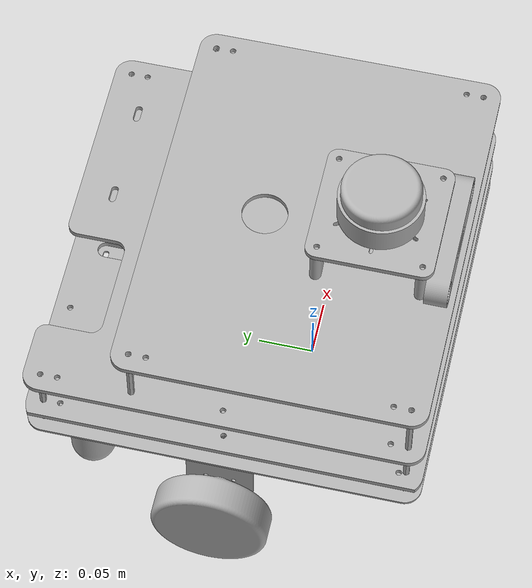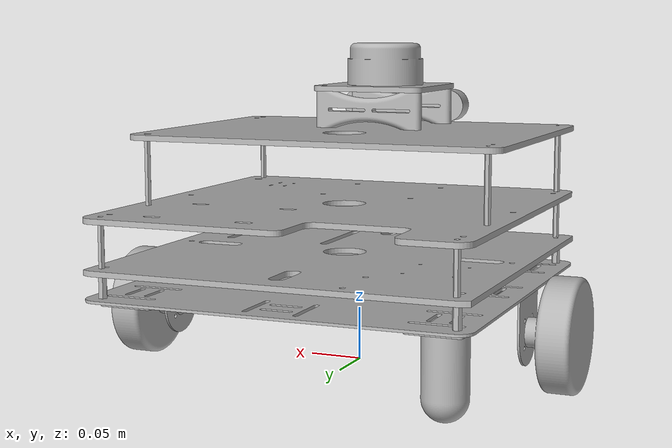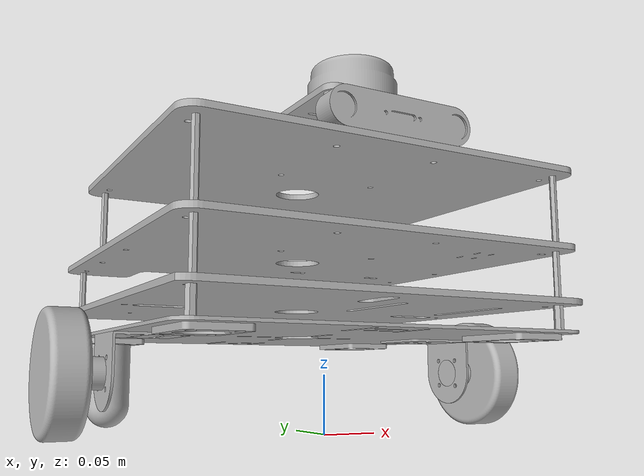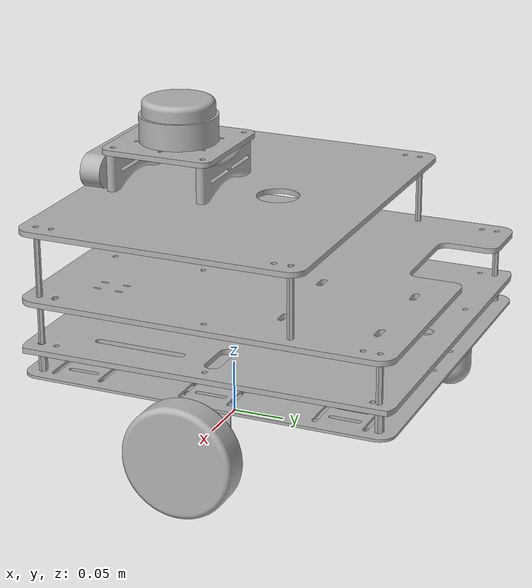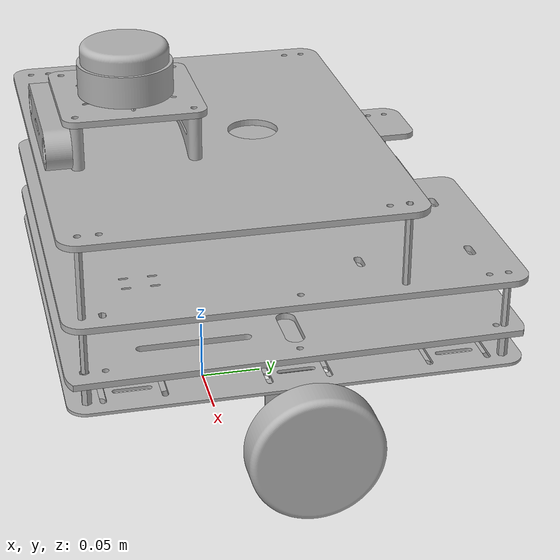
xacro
<?xml version="1.0" ?>
<robot name="testbed" xmlns:xacro="http://www.ros.org/wiki/xacro">

<xacro:include filename="$(find testbed_description)/urdf/materials.xacro" />
<xacro:include filename="$(find testbed_description)/urdf/testbed.trans" />
<xacro:include filename="$(find testbed_description)/urdf/testbed.gazebo" />
<link name="base_link">
  <inertial>
    <origin xyz="-0.002871838515289333 0.04469069037757764 0.08477091166251731" rpy="0 0 0"/>
    <mass value="2.2357349484143354"/>
    <inertia ixx="0.022857" iyy="0.022644" izz="0.045499" ixy="0.0" iyz="0.0" ixz="-0.0"/>
  </inertial>
  <visual>
    <origin xyz="0 0 0" rpy="0 0 0"/>
    <geometry>
      <mesh filename="file://$(find testbed_description)/meshes/base_link.stl" scale="0.001 0.001 0.001"/>
    </geometry>
    <material name="silver"/>
  </visual>
  <collision>
    <origin xyz="0 0 0" rpy="0 0 0"/>
    <geometry>
      <mesh filename="file://$(find testbed_description)/meshes/base_link.stl" scale="0.001 0.001 0.001"/>
    </geometry>
  </collision>
</link>

<link name="m3_2_1">
  <inertial>
    <origin xyz="1.6148470777244128e-07 -3.0962218194874325e-07 0.010499911662517472" rpy="0 0 0"/>
    <mass value="0.003910660159751433"/>
    <inertia ixx="0.0" iyy="0.0" izz="0.0" ixy="0.0" iyz="0.0" ixz="-0.0"/>
  </inertial>
  <visual>
    <origin xyz="0.162872 0.115309 -0.086021" rpy="0 0 0"/>
    <geometry>
      <mesh filename="file://$(find testbed_description)/meshes/m3_2_1.stl" scale="0.001 0.001 0.001"/>
    </geometry>
    <material name="silver"/>
  </visual>
  <collision>
    <origin xyz="0.162872 0.115309 -0.086021" rpy="0 0 0"/>
    <geometry>
      <mesh filename="file://$(find testbed_description)/meshes/m3_2_1.stl" scale="0.001 0.001 0.001"/>
    </geometry>
  </collision>
</link>

<link name="m3_4_1">
  <inertial>
    <origin xyz="1.614847048025947e-07 -3.096221857373793e-07 0.010499911662517028" rpy="0 0 0"/>
    <mass value="0.003910660159751499"/>
    <inertia ixx="0.0" iyy="0.0" izz="0.0" ixy="0.0" iyz="0.0" ixz="0.0"/>
  </inertial>
  <visual>
    <origin xyz="-0.157128 0.115309 -0.086021" rpy="0 0 0"/>
    <geometry>
      <mesh filename="file://$(find testbed_description)/meshes/m3_4_1.stl" scale="0.001 0.001 0.001"/>
    </geometry>
    <material name="silver"/>
  </visual>
  <collision>
    <origin xyz="-0.157128 0.115309 -0.086021" rpy="0 0 0"/>
    <geometry>
      <mesh filename="file://$(find testbed_description)/meshes/m3_4_1.stl" scale="0.001 0.001 0.001"/>
    </geometry>
  </collision>
</link>

<link name="m3_3_1">
  <inertial>
    <origin xyz="1.6148471135291054e-07 -3.0962219799146595e-07 0.010499911662517541" rpy="0 0 0"/>
    <mass value="0.0039106601597516605"/>
    <inertia ixx="0.0" iyy="0.0" izz="0.0" ixy="0.0" iyz="0.0" ixz="0.0"/>
  </inertial>
  <visual>
    <origin xyz="-0.157128 -0.204691 -0.086021" rpy="0 0 0"/>
    <geometry>
      <mesh filename="file://$(find testbed_description)/meshes/m3_3_1.stl" scale="0.001 0.001 0.001"/>
    </geometry>
    <material name="silver"/>
  </visual>
  <collision>
    <origin xyz="-0.157128 -0.204691 -0.086021" rpy="0 0 0"/>
    <geometry>
      <mesh filename="file://$(find testbed_description)/meshes/m3_3_1.stl" scale="0.001 0.001 0.001"/>
    </geometry>
  </collision>
</link>

<link name="m3_1_1">
  <inertial>
    <origin xyz="1.6148471645993645e-07 -3.096221920240172e-07 0.010499911662517972" rpy="0 0 0"/>
    <mass value="0.003910660159751418"/>
    <inertia ixx="0.0" iyy="0.0" izz="0.0" ixy="0.0" iyz="0.0" ixz="0.0"/>
  </inertial>
  <visual>
    <origin xyz="0.162872 -0.204691 -0.086021" rpy="0 0 0"/>
    <geometry>
      <mesh filename="file://$(find testbed_description)/meshes/m3_1_1.stl" scale="0.001 0.001 0.001"/>
    </geometry>
    <material name="silver"/>
  </visual>
  <collision>
    <origin xyz="0.162872 -0.204691 -0.086021" rpy="0 0 0"/>
    <geometry>
      <mesh filename="file://$(find testbed_description)/meshes/m3_1_1.stl" scale="0.001 0.001 0.001"/>
    </geometry>
  </collision>
</link>

<link name="plate_a_1">
  <inertial>
    <origin xyz="-0.287429651569517 0.3375615083598861 -0.08102108833748216" rpy="0 0 0"/>
    <mass value="0.6929229312968146"/>
    <inertia ixx="0.007184" iyy="0.007089" izz="0.014271" ixy="-1.4e-05" iyz="0.0" ixz="0.0"/>
  </inertial>
  <visual>
    <origin xyz="-0.283567 0.292726 -0.190542" rpy="0 0 0"/>
    <geometry>
      <mesh filename="file://$(find testbed_description)/meshes/plate_a_1.stl" scale="0.001 0.001 0.001"/>
    </geometry>
    <material name="silver"/>
  </visual>
  <collision>
    <origin xyz="-0.283567 0.292726 -0.190542" rpy="0 0 0"/>
    <geometry>
      <mesh filename="file://$(find testbed_description)/meshes/plate_a_1.stl" scale="0.001 0.001 0.001"/>
    </geometry>
  </collision>
</link>

<link name="m3_7_1">
  <inertial>
    <origin xyz="2.7335153393592826e-07 -4.1716615491182996e-07 0.019999911662518285" rpy="0 0 0"/>
    <mass value="0.004737292226075159"/>
    <inertia ixx="1e-06" iyy="1e-06" izz="0.0" ixy="0.0" iyz="0.0" ixz="-0.0"/>
  </inertial>
  <visual>
    <origin xyz="0.162142 0.115628 -0.112021" rpy="0 0 0"/>
    <geometry>
      <mesh filename="file://$(find testbed_description)/meshes/m3_7_1.stl" scale="0.001 0.001 0.001"/>
    </geometry>
    <material name="silver"/>
  </visual>
  <collision>
    <origin xyz="0.162142 0.115628 -0.112021" rpy="0 0 0"/>
    <geometry>
      <mesh filename="file://$(find testbed_description)/meshes/m3_7_1.stl" scale="0.001 0.001 0.001"/>
    </geometry>
  </collision>
</link>

<link name="m3_6_1">
  <inertial>
    <origin xyz="-0.11660092516747805 -0.14290657071041882 -0.06352108833748199" rpy="0 0 0"/>
    <mass value="0.0046422546678769275"/>
    <inertia ixx="1e-06" iyy="1e-06" izz="0.0" ixy="-0.0" iyz="0.0" ixz="-0.0"/>
  </inertial>
  <visual>
    <origin xyz="-0.273487 -0.02723 -0.195542" rpy="0 0 0"/>
    <geometry>
      <mesh filename="file://$(find testbed_description)/meshes/m3_6_1.stl" scale="0.001 0.001 0.001"/>
    </geometry>
    <material name="silver"/>
  </visual>
  <collision>
    <origin xyz="-0.273487 -0.02723 -0.195542" rpy="0 0 0"/>
    <geometry>
      <mesh filename="file://$(find testbed_description)/meshes/m3_6_1.stl" scale="0.001 0.001 0.001"/>
    </geometry>
  </collision>
</link>

<link name="m3_8_1">
  <inertial>
    <origin xyz="2.7337389232884313e-07 -4.171661580620878e-07 0.019999911662518674" rpy="0 0 0"/>
    <mass value="0.004737292226075157"/>
    <inertia ixx="1e-06" iyy="1e-06" izz="0.0" ixy="0.0" iyz="0.0" ixz="-0.0"/>
  </inertial>
  <visual>
    <origin xyz="-0.157858 -0.204372 -0.112021" rpy="0 0 0"/>
    <geometry>
      <mesh filename="file://$(find testbed_description)/meshes/m3_8_1.stl" scale="0.001 0.001 0.001"/>
    </geometry>
    <material name="silver"/>
  </visual>
  <collision>
    <origin xyz="-0.157858 -0.204372 -0.112021" rpy="0 0 0"/>
    <geometry>
      <mesh filename="file://$(find testbed_description)/meshes/m3_8_1.stl" scale="0.001 0.001 0.001"/>
    </geometry>
  </collision>
</link>

<link name="m3_5_1">
  <inertial>
    <origin xyz="-5.423040455587724e-07 -4.595496392589826e-07 0.019999911662518147" rpy="0 0 0"/>
    <mass value="0.004734938941716534"/>
    <inertia ixx="1e-06" iyy="1e-06" izz="0.0" ixy="0.0" iyz="0.0" ixz="0.0"/>
  </inertial>
  <visual>
    <origin xyz="0.162142 -0.204372 -0.112021" rpy="0 0 0"/>
    <geometry>
      <mesh filename="file://$(find testbed_description)/meshes/m3_5_1.stl" scale="0.001 0.001 0.001"/>
    </geometry>
    <material name="silver"/>
  </visual>
  <collision>
    <origin xyz="0.162142 -0.204372 -0.112021" rpy="0 0 0"/>
    <geometry>
      <mesh filename="file://$(find testbed_description)/meshes/m3_5_1.stl" scale="0.001 0.001 0.001"/>
    </geometry>
  </collision>
</link>

<link name="plate_b_1">
  <inertial>
    <origin xyz="0.03278613287262262 0.3158779962960577 -0.08102108833748231" rpy="0 0 0"/>
    <mass value="0.6844049179859125"/>
    <inertia ixx="0.006622" iyy="0.007189" izz="0.013808" ixy="-0.000295" iyz="0.0" ixz="0.0"/>
  </inertial>
  <visual>
    <origin xyz="0.032373 0.278415 -0.235542" rpy="0 0 0"/>
    <geometry>
      <mesh filename="file://$(find testbed_description)/meshes/plate_b_1.stl" scale="0.001 0.001 0.001"/>
    </geometry>
    <material name="silver"/>
  </visual>
  <collision>
    <origin xyz="0.032373 0.278415 -0.235542" rpy="0 0 0"/>
    <geometry>
      <mesh filename="file://$(find testbed_description)/meshes/plate_b_1.stl" scale="0.001 0.001 0.001"/>
    </geometry>
  </collision>
</link>

<link name="m3_10_1">
  <inertial>
    <origin xyz="-2.7528053629377602e-05 4.773646407056631e-05 0.029999911662518974" rpy="0 0 0"/>
    <mass value="0.006963381653081437"/>
    <inertia ixx="2e-06" iyy="2e-06" izz="0.0" ixy="-0.0" iyz="0.0" ixz="-0.0"/>
  </inertial>
  <visual>
    <origin xyz="-0.157858 0.115628 -0.157021" rpy="0 0 0"/>
    <geometry>
      <mesh filename="file://$(find testbed_description)/meshes/m3_10_1.stl" scale="0.001 0.001 0.001"/>
    </geometry>
    <material name="silver"/>
  </visual>
  <collision>
    <origin xyz="-0.157858 0.115628 -0.157021" rpy="0 0 0"/>
    <geometry>
      <mesh filename="file://$(find testbed_description)/meshes/m3_10_1.stl" scale="0.001 0.001 0.001"/>
    </geometry>
  </collision>
</link>

<link name="m3_9_1">
  <inertial>
    <origin xyz="2.73350543505968e-07 -4.171627568660963e-07 0.029999911662519446" rpy="0 0 0"/>
    <mass value="0.007105938298349734"/>
    <inertia ixx="2e-06" iyy="2e-06" izz="0.0" ixy="0.0" iyz="0.0" ixz="-0.0"/>
  </inertial>
  <visual>
    <origin xyz="0.162142 0.115628 -0.157021" rpy="0 0 0"/>
    <geometry>
      <mesh filename="file://$(find testbed_description)/meshes/m3_9_1.stl" scale="0.001 0.001 0.001"/>
    </geometry>
    <material name="silver"/>
  </visual>
  <collision>
    <origin xyz="0.162142 0.115628 -0.157021" rpy="0 0 0"/>
    <geometry>
      <mesh filename="file://$(find testbed_description)/meshes/m3_9_1.stl" scale="0.001 0.001 0.001"/>
    </geometry>
  </collision>
</link>

<link name="m3_11_1">
  <inertial>
    <origin xyz="2.7317251694025657e-07 -4.1705451807316773e-07 0.029999911662519058" rpy="0 0 0"/>
    <mass value="0.007105938742419905"/>
    <inertia ixx="2e-06" iyy="2e-06" izz="0.0" ixy="0.0" iyz="0.0" ixz="0.0"/>
  </inertial>
  <visual>
    <origin xyz="0.162142 -0.124372 -0.157021" rpy="0 0 0"/>
    <geometry>
      <mesh filename="file://$(find testbed_description)/meshes/m3_11_1.stl" scale="0.001 0.001 0.001"/>
    </geometry>
    <material name="silver"/>
  </visual>
  <collision>
    <origin xyz="0.162142 -0.124372 -0.157021" rpy="0 0 0"/>
    <geometry>
      <mesh filename="file://$(find testbed_description)/meshes/m3_11_1.stl" scale="0.001 0.001 0.001"/>
    </geometry>
  </collision>
</link>

<link name="m3_12_1">
  <inertial>
    <origin xyz="2.733784830455388e-07 -4.1717282692199653e-07 0.029999911662519058" rpy="0 0 0"/>
    <mass value="0.007105938257057643"/>
    <inertia ixx="2e-06" iyy="2e-06" izz="0.0" ixy="-0.0" iyz="0.0" ixz="0.0"/>
  </inertial>
  <visual>
    <origin xyz="-0.157858 -0.124372 -0.157021" rpy="0 0 0"/>
    <geometry>
      <mesh filename="file://$(find testbed_description)/meshes/m3_12_1.stl" scale="0.001 0.001 0.001"/>
    </geometry>
    <material name="silver"/>
  </visual>
  <collision>
    <origin xyz="-0.157858 -0.124372 -0.157021" rpy="0 0 0"/>
    <geometry>
      <mesh filename="file://$(find testbed_description)/meshes/m3_12_1.stl" scale="0.001 0.001 0.001"/>
    </geometry>
  </collision>
</link>

<link name="plate_c_1">
  <inertial>
    <origin xyz="0.159989959892115 0.11950596872715971 0.002499911662519949" rpy="0 0 0"/>
    <mass value="0.5520670064809862"/>
    <inertia ixx="0.003368" iyy="0.005678" izz="0.009043" ixy="1e-06" iyz="0.0" ixz="0.0"/>
  </inertial>
  <visual>
    <origin xyz="0.162142 0.115628 -0.217021" rpy="0 0 0"/>
    <geometry>
      <mesh filename="file://$(find testbed_description)/meshes/plate_c_1.stl" scale="0.001 0.001 0.001"/>
    </geometry>
    <material name="silver"/>
  </visual>
  <collision>
    <origin xyz="0.162142 0.115628 -0.217021" rpy="0 0 0"/>
    <geometry>
      <mesh filename="file://$(find testbed_description)/meshes/plate_c_1.stl" scale="0.001 0.001 0.001"/>
    </geometry>
  </collision>
</link>

<link name="deptcam_holder_1_1">
  <inertial>
    <origin xyz="0.04318266206360163 -4.235057758650296e-07 0.017499773302860233" rpy="0 0 0"/>
    <mass value="0.028375637610263075"/>
    <inertia ixx="3e-06" iyy="3.3e-05" izz="3.1e-05" ixy="0.0" iyz="-0.0" ixz="-0.0"/>
  </inertial>
  <visual>
    <origin xyz="0.047142 0.100628 -0.222021" rpy="0 0 0"/>
    <geometry>
      <mesh filename="file://$(find testbed_description)/meshes/deptcam_holder_1_1.stl" scale="0.001 0.001 0.001"/>
    </geometry>
    <material name="silver"/>
  </visual>
  <collision>
    <origin xyz="0.047142 0.100628 -0.222021" rpy="0 0 0"/>
    <geometry>
      <mesh filename="file://$(find testbed_description)/meshes/deptcam_holder_1_1.stl" scale="0.001 0.001 0.001"/>
    </geometry>
  </collision>
</link>

<link name="deptcam_holder_2_1">
  <inertial>
    <origin xyz="0.043182662063602335 -4.2350577596043937e-07 0.017499773302860455" rpy="0 0 0"/>
    <mass value="0.02837563761026307"/>
    <inertia ixx="3e-06" iyy="3.3e-05" izz="3.1e-05" ixy="0.0" iyz="-0.0" ixz="-0.0"/>
  </inertial>
  <visual>
    <origin xyz="0.047142 0.010628 -0.222021" rpy="0 0 0"/>
    <geometry>
      <mesh filename="file://$(find testbed_description)/meshes/deptcam_holder_2_1.stl" scale="0.001 0.001 0.001"/>
    </geometry>
    <material name="silver"/>
  </visual>
  <collision>
    <origin xyz="0.047142 0.010628 -0.222021" rpy="0 0 0"/>
    <geometry>
      <mesh filename="file://$(find testbed_description)/meshes/deptcam_holder_2_1.stl" scale="0.001 0.001 0.001"/>
    </geometry>
  </collision>
</link>

<link name="plate_d_1">
  <inertial>
    <origin xyz="0.08572927337078305 -0.08385841716625288 -0.05648508833747806" rpy="0 0 0"/>
    <mass value="0.06777225232995158"/>
    <inertia ixx="6.9e-05" iyy="6.9e-05" izz="0.000138" ixy="0.0" iyz="0.0" ixz="0.0"/>
  </inertial>
  <visual>
    <origin xyz="0.089871 -0.02823 -0.316006" rpy="0 0 0"/>
    <geometry>
      <mesh filename="file://$(find testbed_description)/meshes/plate_d_1.stl" scale="0.001 0.001 0.001"/>
    </geometry>
    <material name="silver"/>
  </visual>
  <collision>
    <origin xyz="0.089871 -0.02823 -0.316006" rpy="0 0 0"/>
    <geometry>
      <mesh filename="file://$(find testbed_description)/meshes/plate_d_1.stl" scale="0.001 0.001 0.001"/>
    </geometry>
  </collision>
</link>

<link name="right_clamp_1">
  <inertial>
    <origin xyz="-0.01816069072185117 -1.009706167034996e-05 -0.012977690718363757" rpy="0 0 0"/>
    <mass value="0.09412923578540548"/>
    <inertia ixx="5.9e-05" iyy="7.1e-05" izz="7e-05" ixy="-0.0" iyz="0.0" ixz="1.9e-05"/>
  </inertial>
  <visual>
    <origin xyz="-0.172128 -0.044691 -0.083521" rpy="0 0 0"/>
    <geometry>
      <mesh filename="file://$(find testbed_description)/meshes/right_clamp_1.stl" scale="0.001 0.001 0.001"/>
    </geometry>
    <material name="silver"/>
  </visual>
  <collision>
    <origin xyz="-0.172128 -0.044691 -0.083521" rpy="0 0 0"/>
    <geometry>
      <mesh filename="file://$(find testbed_description)/meshes/right_clamp_1.stl" scale="0.001 0.001 0.001"/>
    </geometry>
  </collision>
</link>

<link name="left_clamp_1">
  <inertial>
    <origin xyz="0.01816101369127307 9.477816823963425e-06 -0.012977690718362994" rpy="0 0 0"/>
    <mass value="0.0941292357854055"/>
    <inertia ixx="5.9e-05" iyy="7.1e-05" izz="7e-05" ixy="-0.0" iyz="-0.0" ixz="-1.9e-05"/>
  </inertial>
  <visual>
    <origin xyz="0.177872 -0.044691 -0.083521" rpy="0 0 0"/>
    <geometry>
      <mesh filename="file://$(find testbed_description)/meshes/left_clamp_1.stl" scale="0.001 0.001 0.001"/>
    </geometry>
    <material name="silver"/>
  </visual>
  <collision>
    <origin xyz="0.177872 -0.044691 -0.083521" rpy="0 0 0"/>
    <geometry>
      <mesh filename="file://$(find testbed_description)/meshes/left_clamp_1.stl" scale="0.001 0.001 0.001"/>
    </geometry>
  </collision>
</link>

<link name="caster_clamp_1_1">
  <inertial>
    <origin xyz="-0.13652383851529626 -0.0869133096224184 -0.08602108833748355" rpy="0 0 0"/>
    <mass value="0.07648123477927708"/>
    <inertia ixx="4.3e-05" iyy="2e-05" izz="6.3e-05" ixy="0.0" iyz="0.0" ixz="0.0"/>
  </inertial>
  <visual>
    <origin xyz="-0.272937 -0.006104 -0.167042" rpy="0 0 0"/>
    <geometry>
      <mesh filename="file://$(find testbed_description)/meshes/caster_clamp_1_1.stl" scale="0.001 0.001 0.001"/>
    </geometry>
    <material name="silver"/>
  </visual>
  <collision>
    <origin xyz="-0.272937 -0.006104 -0.167042" rpy="0 0 0"/>
    <geometry>
      <mesh filename="file://$(find testbed_description)/meshes/caster_clamp_1_1.stl" scale="0.001 0.001 0.001"/>
    </geometry>
  </collision>
</link>

<link name="caster_clamp_2_1">
  <inertial>
    <origin xyz="0.1134761614847103 0.16308669037757262 -0.08602108833748305" rpy="0 0 0"/>
    <mass value="0.07648123477927704"/>
    <inertia ixx="4.3e-05" iyy="2e-05" izz="6.3e-05" ixy="0.0" iyz="0.0" ixz="0.0"/>
  </inertial>
  <visual>
    <origin xyz="-0.022937 -0.006104 -0.167042" rpy="0 0 0"/>
    <geometry>
      <mesh filename="file://$(find testbed_description)/meshes/caster_clamp_2_1.stl" scale="0.001 0.001 0.001"/>
    </geometry>
    <material name="silver"/>
  </visual>
  <collision>
    <origin xyz="-0.022937 -0.006104 -0.167042" rpy="0 0 0"/>
    <geometry>
      <mesh filename="file://$(find testbed_description)/meshes/caster_clamp_2_1.stl" scale="0.001 0.001 0.001"/>
    </geometry>
  </collision>
</link>

<link name="caster_clamp_4_1">
  <inertial>
    <origin xyz="-0.41509383851529014 0.1916566903775828 -0.0860210883374831" rpy="0 0 0"/>
    <mass value="0.07648123477927705"/>
    <inertia ixx="4.3e-05" iyy="2e-05" izz="6.3e-05" ixy="0.0" iyz="0.0" ixz="-0.0"/>
  </inertial>
  <visual>
    <origin xyz="-0.272937 0.272466 -0.167042" rpy="0 0 0"/>
    <geometry>
      <mesh filename="file://$(find testbed_description)/meshes/caster_clamp_4_1.stl" scale="0.001 0.001 0.001"/>
    </geometry>
    <material name="silver"/>
  </visual>
  <collision>
    <origin xyz="-0.272937 0.272466 -0.167042" rpy="0 0 0"/>
    <geometry>
      <mesh filename="file://$(find testbed_description)/meshes/caster_clamp_4_1.stl" scale="0.001 0.001 0.001"/>
    </geometry>
  </collision>
</link>

<link name="caster_clamp_3_1">
  <inertial>
    <origin xyz="-0.1650938380944446 0.44165669037757604 -0.08602108833748263" rpy="0 0 0"/>
    <mass value="0.07648123477927704"/>
    <inertia ixx="4.3e-05" iyy="2e-05" izz="6.3e-05" ixy="0.0" iyz="0.0" ixz="0.0"/>
  </inertial>
  <visual>
    <origin xyz="-0.022937 0.272466 -0.167042" rpy="0 0 0"/>
    <geometry>
      <mesh filename="file://$(find testbed_description)/meshes/caster_clamp_3_1.stl" scale="0.001 0.001 0.001"/>
    </geometry>
    <material name="silver"/>
  </visual>
  <collision>
    <origin xyz="-0.022937 0.272466 -0.167042" rpy="0 0 0"/>
    <geometry>
      <mesh filename="file://$(find testbed_description)/meshes/caster_clamp_3_1.stl" scale="0.001 0.001 0.001"/>
    </geometry>
  </collision>
</link>

<link name="lidar_1">
  <inertial>
    <origin xyz="2.733707808637645e-07 -4.1716625040488786e-07 0.019152816088995717" rpy="0 0 0"/>
    <mass value="0.22307407736907112"/>
    <inertia ixx="0.000101" iyy="0.000101" izz="0.000145" ixy="0.0" iyz="0.0" ixz="-0.0"/>
  </inertial>
  <visual>
    <origin xyz="0.004142 0.055628 -0.262021" rpy="0 0 0"/>
    <geometry>
      <mesh filename="file://$(find testbed_description)/meshes/lidar_1.stl" scale="0.001 0.001 0.001"/>
    </geometry>
    <material name="silver"/>
  </visual>
  <collision>
    <origin xyz="0.004142 0.055628 -0.262021" rpy="0 0 0"/>
    <geometry>
      <mesh filename="file://$(find testbed_description)/meshes/lidar_1.stl" scale="0.001 0.001 0.001"/>
    </geometry>
  </collision>
</link>

<gazebo reference="lidar_1">
        <material>Gazebo/Red</material>

        <sensor name="laser" type="ray">       //ray sensor
            <pose> 0 0 0 0 0 0 </pose>
            <visualize>true</visualize>
            <update_rate>10</update_rate>
            <ray>
                <scan>
                    <horizontal>
                        <samples>360</samples>
                        <min_angle>-3.14</min_angle>
                        <max_angle>3.14</max_angle>
                    </horizontal>
                </scan>
                <range>
                    <min>0.3</min>
                    <max>12</max>
                </range>
            </ray>
            <plugin name="laser_controller" filename="libgazebo_ros_ray_sensor.so">
                <ros>
                    <argument>~/out:=scan</argument>
                </ros>
                <output_type>sensor_msgs/LaserScan</output_type>
                <frame_name>laser_frame</frame_name>
            </plugin>
        </sensor>
    </gazebo>

    <gazebo>
        <plugin name='diff_drive' filename='libgazebo_ros_diff_drive.so'>

            <!-- Wheel Information -->
            <left_joint>Revolute 28</left_joint>
            <right_joint>Revolute 27</right_joint>
            <wheel_separation>0.386</wheel_separation>
            <wheel_diameter>0.1</wheel_diameter>

            <!-- Limits -->
            <max_wheel_torque>200</max_wheel_torque>
            <max_wheel_acceleration>10.0</max_wheel_acceleration>

            <!-- Output -->
            <odometry_frame>odom</odometry_frame>
            <robot_base_frame>base_link</robot_base_frame>

            <publish_odom>true</publish_odom>
            <publish_odom_tf>true</publish_odom_tf>
            <publish_wheel_tf>true</publish_wheel_tf>

        </plugin>
    </gazebo>

<link name="deptcam_1">
  <inertial>
    <origin xyz="4.543341335743606e-06 -0.009815091027303102 -2.6253696577827057e-07" rpy="0 0 0"/>
    <mass value="0.101119504718155"/>
    <inertia ixx="1.1e-05" iyy="0.000129" izz="0.000125" ixy="0.0" iyz="-0.0" ixz="0.0"/>
  </inertial>
  <visual>
    <origin xyz="0.004142 0.105628 -0.239521" rpy="0 0 0"/>
    <geometry>
      <mesh filename="file://$(find testbed_description)/meshes/deptcam_1.stl" scale="0.001 0.001 0.001"/>
    </geometry>
    <material name="silver"/>
  </visual>
  <collision>
    <origin xyz="0.004142 0.105628 -0.239521" rpy="0 0 0"/>
    <geometry>
      <mesh filename="file://$(find testbed_description)/meshes/deptcam_1.stl" scale="0.001 0.001 0.001"/>
    </geometry>
  </collision>
</link>

<link name="right_wheel_1">
  <inertial>
    <origin xyz="0.03392962603429786 -3.0962233631137703e-07 -8.833748384173834e-08" rpy="0 0 0"/>
    <mass value="0.23957060451958892"/>
    <inertia ixx="0.000301" iyy="0.000174" izz="0.000174" ixy="0.0" iyz="0.0" ixz="0.0"/>
  </inertial>
  <visual>
    <origin xyz="-0.170128 -0.044691 -0.051521" rpy="0 0 0"/>
    <geometry>
      <mesh filename="file://$(find testbed_description)/meshes/right_wheel_1.stl" scale="0.001 0.001 0.001"/>
    </geometry>
    <material name="silver"/>
  </visual>
  <collision>
    <origin xyz="-0.170128 -0.044691 -0.051521" rpy="0 0 0"/>
    <geometry>
      <mesh filename="file://$(find testbed_description)/meshes/right_wheel_1.stl" scale="0.001 0.001 0.001"/>
    </geometry>
  </collision>
</link>

<link name="left_wheel_1">
  <inertial>
    <origin xyz="-0.033929303064876515 2.410058976484719e-07 -1.522553646354785e-07" rpy="0 0 0"/>
    <mass value="0.23957060451958895"/>
    <inertia ixx="0.000301" iyy="0.000174" izz="0.000174" ixy="0.0" iyz="0.0" ixz="0.0"/>
  </inertial>
  <visual>
    <origin xyz="0.175872 -0.04469 -0.051521" rpy="0 0 0"/>
    <geometry>
      <mesh filename="file://$(find testbed_description)/meshes/left_wheel_1.stl" scale="0.001 0.001 0.001"/>
    </geometry>
    <material name="silver"/>
  </visual>
  <collision>
    <origin xyz="0.175872 -0.04469 -0.051521" rpy="0 0 0"/>
    <geometry>
      <mesh filename="file://$(find testbed_description)/meshes/left_wheel_1.stl" scale="0.001 0.001 0.001"/>
    </geometry>
  </collision>
</link>

<link name="caster2_1">
  <inertial>
    <origin xyz="1.6148470430299433e-07 -3.096224187315588e-07 -0.03846174557976324" rpy="0 0 0"/>
    <mass value="0.770402294464313"/>
    <inertia ixx="0.00046" iyy="0.00046" izz="0.000149" ixy="0.0" iyz="0.0" ixz="0.0"/>
  </inertial>
  <visual>
    <origin xyz="-0.136413 0.080809 -0.083521" rpy="0 0 0"/>
    <geometry>
      <mesh filename="file://$(find testbed_description)/meshes/caster2_1.stl" scale="0.001 0.001 0.001"/>
    </geometry>
    <material name="silver"/>
  </visual>
  <collision>
    <origin xyz="-0.136413 0.080809 -0.083521" rpy="0 0 0"/>
    <geometry>
      <mesh filename="file://$(find testbed_description)/meshes/caster2_1.stl" scale="0.001 0.001 0.001"/>
    </geometry>
  </collision>
</link>

<link name="caster1_1">
  <inertial>
    <origin xyz="1.6148470896593103e-07 -3.0962241687193526e-07 -0.03846174557976263" rpy="0 0 0"/>
    <mass value="0.7704022944643129"/>
    <inertia ixx="0.00046" iyy="0.00046" izz="0.000149" ixy="0.0" iyz="-0.0" ixz="0.0"/>
  </inertial>
  <visual>
    <origin xyz="0.142157 0.080809 -0.083521" rpy="0 0 0"/>
    <geometry>
      <mesh filename="file://$(find testbed_description)/meshes/caster1_1.stl" scale="0.001 0.001 0.001"/>
    </geometry>
    <material name="silver"/>
  </visual>
  <collision>
    <origin xyz="0.142157 0.080809 -0.083521" rpy="0 0 0"/>
    <geometry>
      <mesh filename="file://$(find testbed_description)/meshes/caster1_1.stl" scale="0.001 0.001 0.001"/>
    </geometry>
  </collision>
</link>

<link name="caster3_1">
  <inertial>
    <origin xyz="1.6148470985410945e-07 -3.096224280851878e-07 -0.03846174557976274" rpy="0 0 0"/>
    <mass value="0.770402294464313"/>
    <inertia ixx="0.00046" iyy="0.00046" izz="0.000149" ixy="0.0" iyz="-0.0" ixz="0.0"/>
  </inertial>
  <visual>
    <origin xyz="-0.136413 -0.169191 -0.083521" rpy="0 0 0"/>
    <geometry>
      <mesh filename="file://$(find testbed_description)/meshes/caster3_1.stl" scale="0.001 0.001 0.001"/>
    </geometry>
    <material name="silver"/>
  </visual>
  <collision>
    <origin xyz="-0.136413 -0.169191 -0.083521" rpy="0 0 0"/>
    <geometry>
      <mesh filename="file://$(find testbed_description)/meshes/caster3_1.stl" scale="0.001 0.001 0.001"/>
    </geometry>
  </collision>
</link>

<link name="caster4_1">
  <inertial>
    <origin xyz="1.619055567669836e-07 -3.0962242281162844e-07 -0.038461745579762674" rpy="0 0 0"/>
    <mass value="0.770402294464313"/>
    <inertia ixx="0.00046" iyy="0.00046" izz="0.000149" ixy="0.0" iyz="-0.0" ixz="0.0"/>
  </inertial>
  <visual>
    <origin xyz="0.142157 -0.169191 -0.083521" rpy="0 0 0"/>
    <geometry>
      <mesh filename="file://$(find testbed_description)/meshes/caster4_1.stl" scale="0.001 0.001 0.001"/>
    </geometry>
    <material name="silver"/>
  </visual>
  <collision>
    <origin xyz="0.142157 -0.169191 -0.083521" rpy="0 0 0"/>
    <geometry>
      <mesh filename="file://$(find testbed_description)/meshes/caster4_1.stl" scale="0.001 0.001 0.001"/>
    </geometry>
  </collision>
</link>

<joint name="Rigid 1" type="fixed">
  <origin xyz="-0.162872 -0.115309 0.086021" rpy="0 0 0"/>
  <parent link="base_link"/>
  <child link="m3_2_1"/>
</joint>

<joint name="Rigid 2" type="fixed">
  <origin xyz="0.157128 -0.115309 0.086021" rpy="0 0 0"/>
  <parent link="base_link"/>
  <child link="m3_4_1"/>
</joint>

<joint name="Rigid 3" type="fixed">
  <origin xyz="0.157128 0.204691 0.086021" rpy="0 0 0"/>
  <parent link="base_link"/>
  <child link="m3_3_1"/>
</joint>

<joint name="Rigid 4" type="fixed">
  <origin xyz="-0.162872 0.204691 0.086021" rpy="0 0 0"/>
  <parent link="base_link"/>
  <child link="m3_1_1"/>
</joint>

<joint name="Rigid 5" type="fixed">
  <origin xyz="0.446439 -0.177417 0.104521" rpy="0 0 0"/>
  <parent link="m3_2_1"/>
  <child link="plate_a_1"/>
</joint>

<joint name="Rigid 6" type="fixed">
  <origin xyz="-0.445709 0.177098 -0.078521" rpy="0 0 0"/>
  <parent link="plate_a_1"/>
  <child link="m3_7_1"/>
</joint>

<joint name="Rigid 7" type="fixed">
  <origin xyz="-0.01008 0.319956 0.005" rpy="0 0 0"/>
  <parent link="plate_a_1"/>
  <child link="m3_6_1"/>
</joint>

<joint name="Rigid 8" type="fixed">
  <origin xyz="-0.125709 0.497098 -0.078521" rpy="0 0 0"/>
  <parent link="plate_a_1"/>
  <child link="m3_8_1"/>
</joint>

<joint name="Rigid 9" type="fixed">
  <origin xyz="-0.445709 0.497098 -0.078521" rpy="0 0 0"/>
  <parent link="plate_a_1"/>
  <child link="m3_5_1"/>
</joint>

<joint name="Rigid 10" type="fixed">
  <origin xyz="0.129769 -0.482787 0.123521" rpy="0 0 0"/>
  <parent link="m3_5_1"/>
  <child link="plate_b_1"/>
</joint>

<joint name="Rigid 11" type="fixed">
  <origin xyz="0.190231 0.162787 -0.078521" rpy="0 0 0"/>
  <parent link="plate_b_1"/>
  <child link="m3_10_1"/>
</joint>

<joint name="Rigid 12" type="fixed">
  <origin xyz="-0.129769 0.162787 -0.078521" rpy="0 0 0"/>
  <parent link="plate_b_1"/>
  <child link="m3_9_1"/>
</joint>

<joint name="Rigid 13" type="fixed">
  <origin xyz="-0.129769 0.402787 -0.078521" rpy="0 0 0"/>
  <parent link="plate_b_1"/>
  <child link="m3_11_1"/>
</joint>

<joint name="Rigid 14" type="fixed">
  <origin xyz="0.190231 0.402787 -0.078521" rpy="0 0 0"/>
  <parent link="plate_b_1"/>
  <child link="m3_12_1"/>
</joint>

<joint name="Rigid 15" type="fixed">
  <origin xyz="0.0 0.0 0.06" rpy="0 0 0"/>
  <parent link="m3_9_1"/>
  <child link="plate_c_1"/>
</joint>

<joint name="Rigid 16" type="fixed">
  <origin xyz="0.115 0.015 0.005" rpy="0 0 0"/>
  <parent link="plate_c_1"/>
  <child link="deptcam_holder_1_1"/>
</joint>

<joint name="Rigid 17" type="fixed">
  <origin xyz="0.115 0.105 0.005" rpy="0 0 0"/>
  <parent link="plate_c_1"/>
  <child link="deptcam_holder_2_1"/>
</joint>

<joint name="Rigid 18" type="fixed">
  <origin xyz="-0.042729 0.038858 0.093985" rpy="0 0 0"/>
  <parent link="deptcam_holder_2_1"/>
  <child link="plate_d_1"/>
</joint>

<joint name="Rigid 19" type="fixed">
  <origin xyz="0.172128 0.044691 0.083521" rpy="0 0 0"/>
  <parent link="base_link"/>
  <child link="right_clamp_1"/>
</joint>

<joint name="Rigid 20" type="fixed">
  <origin xyz="-0.177872 0.044691 0.083521" rpy="0 0 0"/>
  <parent link="base_link"/>
  <child link="left_clamp_1"/>
</joint>

<joint name="Rigid 21" type="fixed">
  <origin xyz="0.272937 0.006104 0.167042" rpy="0 0 0"/>
  <parent link="base_link"/>
  <child link="caster_clamp_1_1"/>
</joint>

<joint name="Rigid 22" type="fixed">
  <origin xyz="0.022937 0.006104 0.167042" rpy="0 0 0"/>
  <parent link="base_link"/>
  <child link="caster_clamp_2_1"/>
</joint>

<joint name="Rigid 23" type="fixed">
  <origin xyz="0.272937 -0.272466 0.167042" rpy="0 0 0"/>
  <parent link="base_link"/>
  <child link="caster_clamp_4_1"/>
</joint>

<joint name="Rigid 24" type="fixed">
  <origin xyz="0.022937 -0.272466 0.167042" rpy="0 0 0"/>
  <parent link="base_link"/>
  <child link="caster_clamp_3_1"/>
</joint>

<joint name="Rigid 25" type="fixed">
  <origin xyz="0.085729 -0.083858 -0.053985" rpy="0 0 0"/>
  <parent link="plate_d_1"/>
  <child link="lidar_1"/>
</joint>

<joint name="Rigid 26" type="fixed">
  <origin xyz="0.043 -0.005 0.0175" rpy="0 0 0"/>
  <parent link="deptcam_holder_1_1"/>
  <child link="deptcam_1"/>
</joint>

<joint name="Revolute 27" type="continuous">
  <origin xyz="-0.002 0.0 -0.032" rpy="0 0 0"/>
  <parent link="right_clamp_1"/>
  <child link="right_wheel_1"/>
  <axis xyz="-1.0 0.0 0.0"/>
</joint>

<joint name="Revolute 28" type="continuous">
  <origin xyz="0.002 -1e-06 -0.032" rpy="0 0 0"/>
  <parent link="left_clamp_1"/>
  <child link="left_wheel_1"/>
  <axis xyz="1.0 -0.0 -0.0"/>
</joint>

<joint name="Rigid 29" type="fixed">
  <origin xyz="-0.136524 -0.086913 -0.083521" rpy="0 0 0"/>
  <parent link="caster_clamp_1_1"/>
  <child link="caster2_1"/>
</joint>

<joint name="Rigid 30" type="fixed">
  <origin xyz="-0.415094 0.191657 -0.083521" rpy="0 0 0"/>
  <parent link="caster_clamp_4_1"/>
  <child link="caster1_1"/>
</joint>

<joint name="Rigid 31" type="fixed">
  <origin xyz="0.113476 0.163087 -0.083521" rpy="0 0 0"/>
  <parent link="caster_clamp_2_1"/>
  <child link="caster3_1"/>
</joint>

<joint name="Rigid 32" type="fixed">
  <origin xyz="-0.165094 0.441657 -0.083521" rpy="0 0 0"/>
  <parent link="caster_clamp_3_1"/>
  <child link="caster4_1"/>
</joint>

</robot>

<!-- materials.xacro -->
<robot name="testbed_2WD" xmlns:xacro="http://www.ros.org/wiki/xacro" >

<material name="silver">
  <color rgba="0.700 0.700 0.700 1.000"/>
</material>

</robot>

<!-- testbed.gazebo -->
<robot name="testbed" xmlns:xacro="http://www.ros.org/wiki/xacro" >

<xacro:property name="body_color" value="Gazebo/Silver" />

<gazebo>
  <plugin name="control" filename="libgazebo_ros_control.so"/>
</gazebo>
<gazebo reference="base_link">
  <material>${body_color}</material>
  <mu1>0.2</mu1>
  <mu2>0.2</mu2>
  <self_collide>true</self_collide>
  <gravity>true</gravity>
</gazebo>

<gazebo reference="m3_2_1">
  <material>${body_color}</material>
  <mu1>0.2</mu1>
  <mu2>0.2</mu2>
  <self_collide>true</self_collide>
</gazebo>

<gazebo reference="m3_4_1">
  <material>${body_color}</material>
  <mu1>0.2</mu1>
  <mu2>0.2</mu2>
  <self_collide>true</self_collide>
</gazebo>

<gazebo reference="m3_3_1">
  <material>${body_color}</material>
  <mu1>0.2</mu1>
  <mu2>0.2</mu2>
  <self_collide>true</self_collide>
</gazebo>

<gazebo reference="m3_1_1">
  <material>${body_color}</material>
  <mu1>0.2</mu1>
  <mu2>0.2</mu2>
  <self_collide>true</self_collide>
</gazebo>

<gazebo reference="plate_a_1">
  <material>${body_color}</material>
  <mu1>0.2</mu1>
  <mu2>0.2</mu2>
  <self_collide>true</self_collide>
</gazebo>

<gazebo reference="m3_7_1">
  <material>${body_color}</material>
  <mu1>0.2</mu1>
  <mu2>0.2</mu2>
  <self_collide>true</self_collide>
</gazebo>

<gazebo reference="m3_6_1">
  <material>${body_color}</material>
  <mu1>0.2</mu1>
  <mu2>0.2</mu2>
  <self_collide>true</self_collide>
</gazebo>

<gazebo reference="m3_8_1">
  <material>${body_color}</material>
  <mu1>0.2</mu1>
  <mu2>0.2</mu2>
  <self_collide>true</self_collide>
</gazebo>

<gazebo reference="m3_5_1">
  <material>${body_color}</material>
  <mu1>0.2</mu1>
  <mu2>0.2</mu2>
  <self_collide>true</self_collide>
</gazebo>

<gazebo reference="plate_b_1">
  <material>${body_color}</material>
  <mu1>0.2</mu1>
  <mu2>0.2</mu2>
  <self_collide>true</self_collide>
</gazebo>

<gazebo reference="m3_10_1">
  <material>${body_color}</material>
  <mu1>0.2</mu1>
  <mu2>0.2</mu2>
  <self_collide>true</self_collide>
</gazebo>

<gazebo reference="m3_9_1">
  <material>${body_color}</material>
  <mu1>0.2</mu1>
  <mu2>0.2</mu2>
  <self_collide>true</self_collide>
</gazebo>

<gazebo reference="m3_11_1">
  <material>${body_color}</material>
  <mu1>0.2</mu1>
  <mu2>0.2</mu2>
  <self_collide>true</self_collide>
</gazebo>

<gazebo reference="m3_12_1">
  <material>${body_color}</material>
  <mu1>0.2</mu1>
  <mu2>0.2</mu2>
  <self_collide>true</self_collide>
</gazebo>

<gazebo reference="plate_c_1">
  <material>${body_color}</material>
  <mu1>0.2</mu1>
  <mu2>0.2</mu2>
  <self_collide>true</self_collide>
</gazebo>

<gazebo reference="deptcam_holder_1_1">
  <material>${body_color}</material>
  <mu1>0.2</mu1>
  <mu2>0.2</mu2>
  <self_collide>true</self_collide>
</gazebo>

<gazebo reference="deptcam_holder_2_1">
  <material>${body_color}</material>
  <mu1>0.2</mu1>
  <mu2>0.2</mu2>
  <self_collide>true</self_collide>
</gazebo>

<gazebo reference="plate_d_1">
  <material>${body_color}</material>
  <mu1>0.2</mu1>
  <mu2>0.2</mu2>
  <self_collide>true</self_collide>
</gazebo>

<gazebo reference="right_clamp_1">
  <material>${body_color}</material>
  <mu1>0.2</mu1>
  <mu2>0.2</mu2>
  <self_collide>true</self_collide>
</gazebo>

<gazebo reference="left_clamp_1">
  <material>${body_color}</material>
  <mu1>0.2</mu1>
  <mu2>0.2</mu2>
  <self_collide>true</self_collide>
</gazebo>

<gazebo reference="caster_clamp_1_1">
  <material>${body_color}</material>
  <mu1>0.2</mu1>
  <mu2>0.2</mu2>
  <self_collide>true</self_collide>
</gazebo>

<gazebo reference="caster_clamp_2_1">
  <material>${body_color}</material>
  <mu1>0.2</mu1>
  <mu2>0.2</mu2>
  <self_collide>true</self_collide>
</gazebo>

<gazebo reference="caster_clamp_4_1">
  <material>${body_color}</material>
  <mu1>0.2</mu1>
  <mu2>0.2</mu2>
  <self_collide>true</self_collide>
</gazebo>

<gazebo reference="caster_clamp_3_1">
  <material>${body_color}</material>
  <mu1>0.2</mu1>
  <mu2>0.2</mu2>
  <self_collide>true</self_collide>
</gazebo>

<gazebo reference="lidar_1">
  <material>${body_color}</material>
  <mu1>0.2</mu1>
  <mu2>0.2</mu2>
  <self_collide>true</self_collide>
</gazebo>

<gazebo reference="deptcam_1">
  <material>${body_color}</material>
  <mu1>0.2</mu1>
  <mu2>0.2</mu2>
  <self_collide>true</self_collide>
</gazebo>

<gazebo reference="right_wheel_1">
  <material>${body_color}</material>
  <mu1>0.2</mu1>
  <mu2>0.2</mu2>
  <self_collide>true</self_collide>
</gazebo>

<gazebo reference="left_wheel_1">
  <material>${body_color}</material>
  <mu1>0.2</mu1>
  <mu2>0.2</mu2>
  <self_collide>true</self_collide>
</gazebo>

<gazebo reference="caster2_1">
  <material>${body_color}</material>
  <mu1>0.2</mu1>
  <mu2>0.2</mu2>
  <self_collide>true</self_collide>
</gazebo>

<gazebo reference="caster1_1">
  <material>${body_color}</material>
  <mu1>0.2</mu1>
  <mu2>0.2</mu2>
  <self_collide>true</self_collide>
</gazebo>

<gazebo reference="caster3_1">
  <material>${body_color}</material>
  <mu1>0.2</mu1>
  <mu2>0.2</mu2>
  <self_collide>true</self_collide>
</gazebo>

<gazebo reference="caster4_1">
  <material>${body_color}</material>
  <mu1>0.2</mu1>
  <mu2>0.2</mu2>
  <self_collide>true</self_collide>
</gazebo>

</robot>
